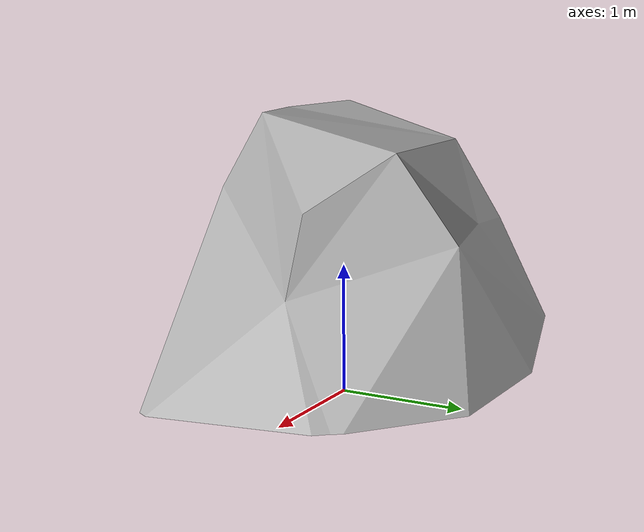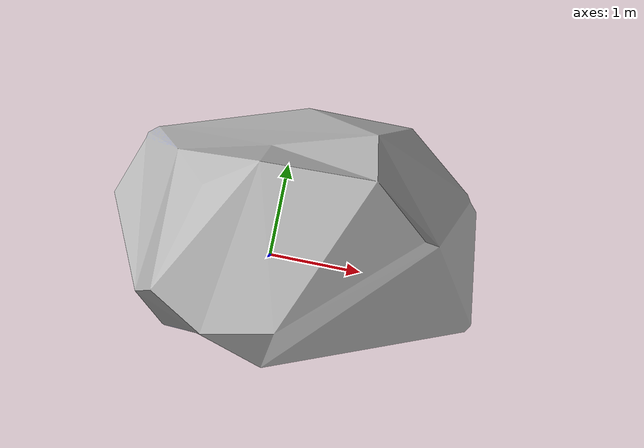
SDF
<?xml version="1.0" ?>
<sdf version="1.6">
  <model name="rock4">
    <pose>0 0 0.4 0 0 0</pose>
    <static>true</static>
    <link name="link">
	    <collision name='collision'>
        <pose frame=''>.2 .3 .3 0 1.55 0</pose>
        <geometry>
          <cylinder>
            <radius>1.1</radius>
            <length>2.8</length>
          </cylinder>
        </geometry>
      </collision>
      <visual name="visual">
        <geometry>
          <mesh>
            <uri>model://rock_4/meshes/model.dae</uri>
          </mesh>
        </geometry>
        <material>
          <script>
            <uri>model://rock_4/materials/scripts</uri>
            <uri>model://rock_4/materials/textures</uri>
            <name>rock/4</name>
          </script>
        </material>
      </visual>
    </link>
  </model>
</sdf>
